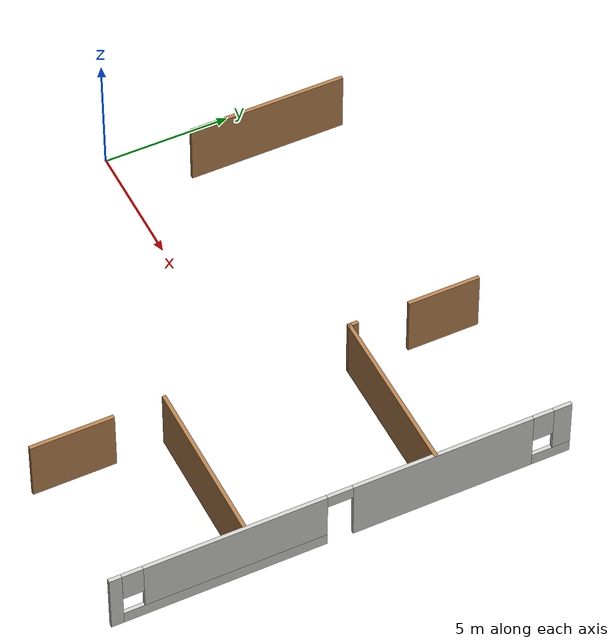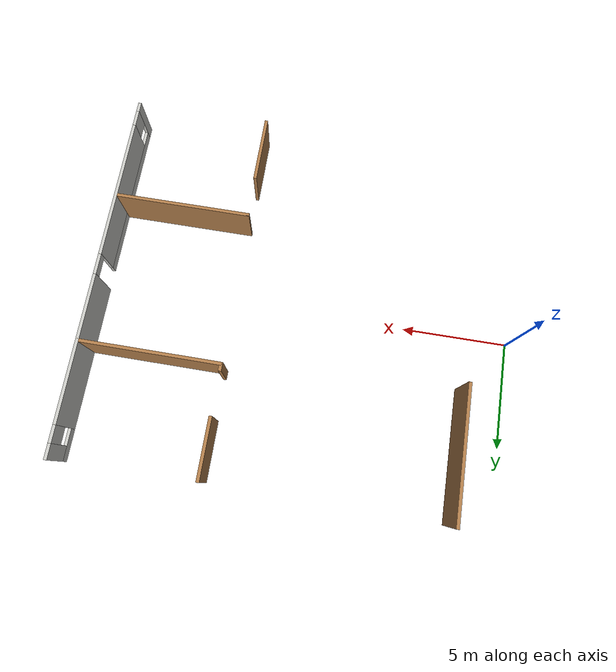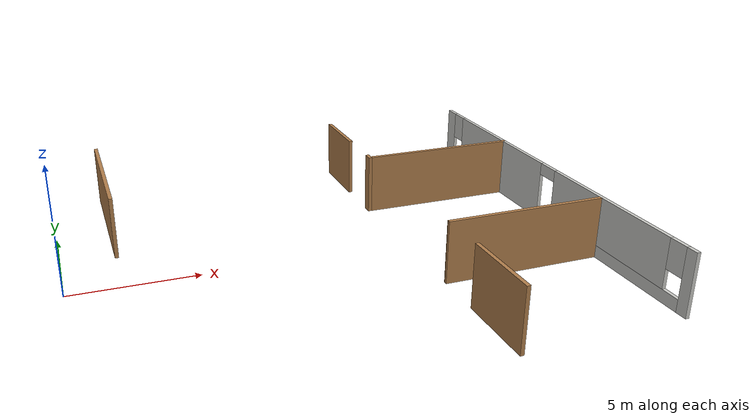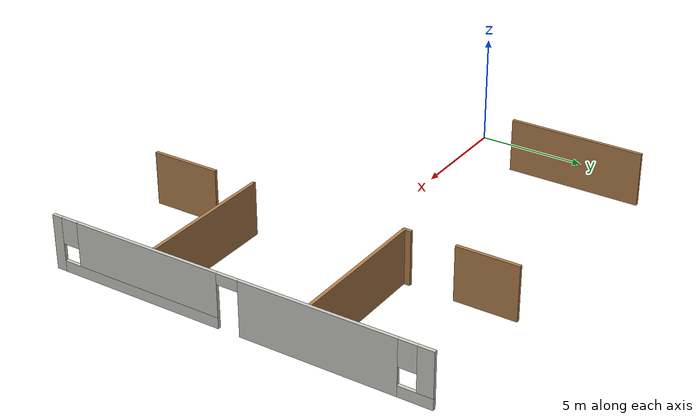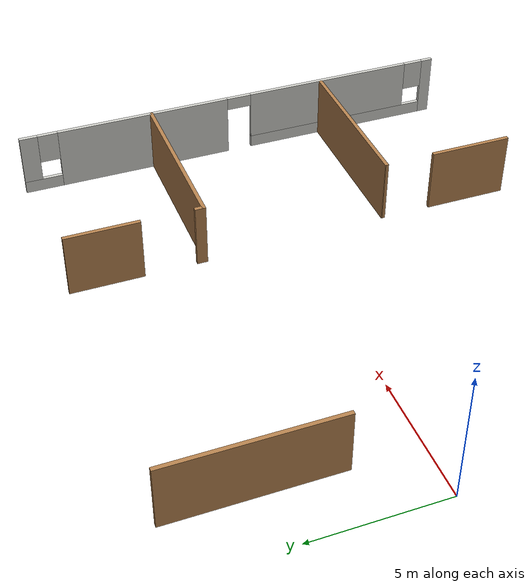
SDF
<sdf version="1.6">
 <model name="mybuilding">
  <link name="Wall_41">
   <pose>19.8298 0.007562 0 0 -0 1.5708</pose>
   <visual name="Wall_41_Visual_9">
    <pose>-0.150712 0 2.25 0 -0 0</pose>
    <geometry><box><size>1 0.15 0.5</size></box></geometry>
    <material>
     <script><uri>file://media/materials/scripts/gazebo.material</uri><name>Gazebo/CeilingTiled</name></script>
     <ambient>1 0.972549 0.847059 1</ambient>
     <shader type="pixel"/>
     <diffuse>1 1 1 1</diffuse>
     <specular>0 0 0 1</specular>
     <emissive>0 0 0 1</emissive>
    </material>
    <meta><layer>0</layer></meta>
   </visual>
   <visual name="Wall_41_Visual_0">
    <pose>-8.63665 0 1.25 0 -0 0</pose>
    <geometry><box><size>0.476697 0.15 2.5</size></box></geometry>
    <material>
     <script><uri>file://media/materials/scripts/gazebo.material</uri><name>Gazebo/CeilingTiled</name></script>
     <ambient>1 0.972549 0.847059 1</ambient>
     <shader type="pixel"/>
     <diffuse>1 1 1 1</diffuse>
     <specular>0 0 0 1</specular>
     <emissive>0 0 0 1</emissive>
    </material>
    <meta><layer>0</layer></meta>
   </visual>
   <visual name="Wall_41_Visual_1">
    <pose>3.85638 0 1.25 0 -0 0</pose>
    <geometry><box><size>7.01419 0.15 2.5</size></box></geometry>
    <material>
     <script><uri>file://media/materials/scripts/gazebo.material</uri><name>Gazebo/CeilingTiled</name></script>
     <ambient>1 0.972549 0.847059 1</ambient>
     <shader type="pixel"/>
     <diffuse>1 1 1 1</diffuse>
     <specular>0 0 0 1</specular>
     <emissive>0 0 0 1</emissive>
    </material>
    <meta><layer>0</layer></meta>
   </visual>
   <visual name="Wall_41_Visual_2">
    <pose>-4.52451 0 0.25 0 -0 0</pose>
    <geometry><box><size>7.74759 0.15 0.5</size></box></geometry>
    <material>
     <script><uri>file://media/materials/scripts/gazebo.material</uri><name>Gazebo/CeilingTiled</name></script>
     <ambient>1 0.972549 0.847059 1</ambient>
     <shader type="pixel"/>
     <diffuse>1 1 1 1</diffuse>
     <specular>0 0 0 1</specular>
     <emissive>0 0 0 1</emissive>
    </material>
    <meta><layer>0</layer></meta>
   </visual>
   <visual name="Wall_41_Visual_3">
    <pose>8.11924 0 0.25 0 -0 0</pose>
    <geometry><box><size>1.51152 0.15 0.5</size></box></geometry>
    <material>
     <script><uri>file://media/materials/scripts/gazebo.material</uri><name>Gazebo/CeilingTiled</name></script>
     <ambient>1 0.972549 0.847059 1</ambient>
     <shader type="pixel"/>
     <diffuse>1 1 1 1</diffuse>
     <specular>0 0 0 1</specular>
     <emissive>0 0 0 1</emissive>
    </material>
    <meta><layer>0</layer></meta>
   </visual>
   <visual name="Wall_41_Visual_4">
    <pose>-4.12451 0 1.5 0 -0 0</pose>
    <geometry><box><size>6.94759 0.15 2</size></box></geometry>
    <material>
     <script><uri>file://media/materials/scripts/gazebo.material</uri><name>Gazebo/CeilingTiled</name></script>
     <ambient>1 0.972549 0.847059 1</ambient>
     <shader type="pixel"/>
     <diffuse>1 1 1 1</diffuse>
     <specular>0 0 0 1</specular>
     <emissive>0 0 0 1</emissive>
    </material>
    <meta><layer>0</layer></meta>
   </visual>
   <visual name="Wall_41_Visual_5">
    <pose>-4.12451 0 1.5 0 -0 0</pose>
    <geometry><box><size>6.94759 0.15 2</size></box></geometry>
    <material>
     <script><uri>file://media/materials/scripts/gazebo.material</uri><name>Gazebo/CeilingTiled</name></script>
     <ambient>1 0.972549 0.847059 1</ambient>
     <shader type="pixel"/>
     <diffuse>1 1 1 1</diffuse>
     <specular>0 0 0 1</specular>
     <emissive>0 0 0 1</emissive>
    </material>
    <meta><layer>0</layer></meta>
   </visual>
   <visual name="Wall_41_Visual_6">
    <pose>8.51924 0 1.5 0 -0 0</pose>
    <geometry><box><size>0.711521 0.15 2</size></box></geometry>
    <material>
     <script><uri>file://media/materials/scripts/gazebo.material</uri><name>Gazebo/CeilingTiled</name></script>
     <ambient>1 0.972549 0.847059 1</ambient>
     <shader type="pixel"/>
     <diffuse>1 1 1 1</diffuse>
     <specular>0 0 0 1</specular>
     <emissive>0 0 0 1</emissive>
    </material>
    <meta><layer>0</layer></meta>
   </visual>
   <visual name="Wall_41_Visual_7">
    <pose>-7.9983 0 1.9 0 -0 0</pose>
    <geometry><box><size>0.8 0.15 1.2</size></box></geometry>
    <material>
     <script><uri>file://media/materials/scripts/gazebo.material</uri><name>Gazebo/CeilingTiled</name></script>
     <ambient>1 0.972549 0.847059 1</ambient>
     <shader type="pixel"/>
     <diffuse>1 1 1 1</diffuse>
     <specular>0 0 0 1</specular>
     <emissive>0 0 0 1</emissive>
    </material>
    <meta><layer>0</layer></meta>
   </visual>
   <visual name="Wall_41_Visual_8">
    <pose>7.76348 0 1.9 0 -0 0</pose>
    <geometry><box><size>0.8 0.15 1.2</size></box></geometry>
    <material>
     <script><uri>file://media/materials/scripts/gazebo.material</uri><name>Gazebo/CeilingTiled</name></script>
     <ambient>1 0.972549 0.847059 1</ambient>
     <shader type="pixel"/>
     <diffuse>1 1 1 1</diffuse>
     <specular>0 0 0 1</specular>
     <emissive>0 0 0 1</emissive>
    </material>
    <meta><layer>0</layer></meta>
   </visual>
   <visual name="Wall_41_Visual_10">
    <pose>-0.150712 0 2.25 0 -0 0</pose>
    <geometry><box><size>1 0.15 0.5</size></box></geometry>
    <material>
     <script><uri>file://media/materials/scripts/gazebo.material</uri><name>Gazebo/CeilingTiled</name></script>
     <ambient>1 0.972549 0.847059 1</ambient>
     <shader type="pixel"/>
     <diffuse>1 1 1 1</diffuse>
     <specular>0 0 0 1</specular>
     <emissive>0 0 0 1</emissive>
    </material>
    <meta><layer>0</layer></meta>
   </visual>
   <collision name="Wall_41_Collision_0">
    <pose>-8.63665 0 1.25 0 -0 0</pose>
    <geometry><box><size>0.476697 0.15 2.5</size></box></geometry>
    <surface>
     <friction>
      <ode><mu>1</mu><mu2>1</mu2><fdir1>0 0 0</fdir1><slip1>0</slip1><slip2>0</slip2></ode>
      <torsional>
       <coefficient>1</coefficient>
       <patch_radius>0</patch_radius>
       <surface_radius>0</surface_radius>
       <use_patch_radius>1</use_patch_radius>
       <ode><slip>0</slip></ode>
      </torsional>
     </friction>
     <bounce><restitution_coefficient>0</restitution_coefficient><threshold>1e+06</threshold></bounce>
     <contact>
      <collide_without_contact>0</collide_without_contact>
      <collide_without_contact_bitmask>1</collide_without_contact_bitmask>
      <collide_bitmask>1</collide_bitmask>
      <ode>
       <soft_cfm>0</soft_cfm>
       <soft_erp>0.2</soft_erp>
       <kp>1e+13</kp>
       <kd>1</kd>
       <max_vel>0.01</max_vel>
       <min_depth>0</min_depth>
      </ode>
      <bullet>
       <split_impulse>1</split_impulse>
       <split_impulse_penetration_threshold>-0.01</split_impulse_penetration_threshold>
       <soft_cfm>0</soft_cfm>
       <soft_erp>0.2</soft_erp>
       <kp>1e+13</kp>
       <kd>1</kd>
      </bullet>
     </contact>
    </surface>
   </collision>
   <collision name="Wall_41_Collision_1">
    <pose>3.85638 0 1.25 0 -0 0</pose>
    <geometry><box><size>7.01419 0.15 2.5</size></box></geometry>
    <surface>
     <friction>
      <ode><mu>1</mu><mu2>1</mu2><fdir1>0 0 0</fdir1><slip1>0</slip1><slip2>0</slip2></ode>
      <torsional>
       <coefficient>1</coefficient>
       <patch_radius>0</patch_radius>
       <surface_radius>0</surface_radius>
       <use_patch_radius>1</use_patch_radius>
       <ode><slip>0</slip></ode>
      </torsional>
     </friction>
     <bounce><restitution_coefficient>0</restitution_coefficient><threshold>1e+06</threshold></bounce>
     <contact>
      <collide_without_contact>0</collide_without_contact>
      <collide_without_contact_bitmask>1</collide_without_contact_bitmask>
      <collide_bitmask>1</collide_bitmask>
      <ode>
       <soft_cfm>0</soft_cfm>
       <soft_erp>0.2</soft_erp>
       <kp>1e+13</kp>
       <kd>1</kd>
       <max_vel>0.01</max_vel>
       <min_depth>0</min_depth>
      </ode>
      <bullet>
       <split_impulse>1</split_impulse>
       <split_impulse_penetration_threshold>-0.01</split_impulse_penetration_threshold>
       <soft_cfm>0</soft_cfm>
       <soft_erp>0.2</soft_erp>
       <kp>1e+13</kp>
       <kd>1</kd>
      </bullet>
     </contact>
    </surface>
   </collision>
   <collision name="Wall_41_Collision_2">
    <pose>-4.52451 0 0.25 0 -0 0</pose>
    <geometry><box><size>7.74759 0.15 0.5</size></box></geometry>
    <surface>
     <friction>
      <ode><mu>1</mu><mu2>1</mu2><fdir1>0 0 0</fdir1><slip1>0</slip1><slip2>0</slip2></ode>
      <torsional>
       <coefficient>1</coefficient>
       <patch_radius>0</patch_radius>
       <surface_radius>0</surface_radius>
       <use_patch_radius>1</use_patch_radius>
       <ode><slip>0</slip></ode>
      </torsional>
     </friction>
     <bounce><restitution_coefficient>0</restitution_coefficient><threshold>1e+06</threshold></bounce>
     <contact>
      <collide_without_contact>0</collide_without_contact>
      <collide_without_contact_bitmask>1</collide_without_contact_bitmask>
      <collide_bitmask>1</collide_bitmask>
      <ode>
       <soft_cfm>0</soft_cfm>
       <soft_erp>0.2</soft_erp>
       <kp>1e+13</kp>
       <kd>1</kd>
       <max_vel>0.01</max_vel>
       <min_depth>0</min_depth>
      </ode>
      <bullet>
       <split_impulse>1</split_impulse>
       <split_impulse_penetration_threshold>-0.01</split_impulse_penetration_threshold>
       <soft_cfm>0</soft_cfm>
       <soft_erp>0.2</soft_erp>
       <kp>1e+13</kp>
       <kd>1</kd>
      </bullet>
     </contact>
    </surface>
   </collision>
   <collision name="Wall_41_Collision_3">
    <pose>8.11924 0 0.25 0 -0 0</pose>
    <geometry><box><size>1.51152 0.15 0.5</size></box></geometry>
    <surface>
     <friction>
      <ode><mu>1</mu><mu2>1</mu2><fdir1>0 0 0</fdir1><slip1>0</slip1><slip2>0</slip2></ode>
      <torsional>
       <coefficient>1</coefficient>
       <patch_radius>0</patch_radius>
       <surface_radius>0</surface_radius>
       <use_patch_radius>1</use_patch_radius>
       <ode><slip>0</slip></ode>
      </torsional>
     </friction>
     <bounce><restitution_coefficient>0</restitution_coefficient><threshold>1e+06</threshold></bounce>
     <contact>
      <collide_without_contact>0</collide_without_contact>
      <collide_without_contact_bitmask>1</collide_without_contact_bitmask>
      <collide_bitmask>1</collide_bitmask>
      <ode>
       <soft_cfm>0</soft_cfm>
       <soft_erp>0.2</soft_erp>
       <kp>1e+13</kp>
       <kd>1</kd>
       <max_vel>0.01</max_vel>
       <min_depth>0</min_depth>
      </ode>
      <bullet>
       <split_impulse>1</split_impulse>
       <split_impulse_penetration_threshold>-0.01</split_impulse_penetration_threshold>
       <soft_cfm>0</soft_cfm>
       <soft_erp>0.2</soft_erp>
       <kp>1e+13</kp>
       <kd>1</kd>
      </bullet>
     </contact>
    </surface>
   </collision>
   <collision name="Wall_41_Collision_4">
    <pose>-4.12451 0 1.5 0 -0 0</pose>
    <geometry><box><size>6.94759 0.15 2</size></box></geometry>
    <surface>
     <friction>
      <ode><mu>1</mu><mu2>1</mu2><fdir1>0 0 0</fdir1><slip1>0</slip1><slip2>0</slip2></ode>
      <torsional>
       <coefficient>1</coefficient>
       <patch_radius>0</patch_radius>
       <surface_radius>0</surface_radius>
       <use_patch_radius>1</use_patch_radius>
       <ode><slip>0</slip></ode>
      </torsional>
     </friction>
     <bounce><restitution_coefficient>0</restitution_coefficient><threshold>1e+06</threshold></bounce>
     <contact>
      <collide_without_contact>0</collide_without_contact>
      <collide_without_contact_bitmask>1</collide_without_contact_bitmask>
      <collide_bitmask>1</collide_bitmask>
      <ode>
       <soft_cfm>0</soft_cfm>
       <soft_erp>0.2</soft_erp>
       <kp>1e+13</kp>
       <kd>1</kd>
       <max_vel>0.01</max_vel>
       <min_depth>0</min_depth>
      </ode>
      <bullet>
       <split_impulse>1</split_impulse>
       <split_impulse_penetration_threshold>-0.01</split_impulse_penetration_threshold>
       <soft_cfm>0</soft_cfm>
       <soft_erp>0.2</soft_erp>
       <kp>1e+13</kp>
       <kd>1</kd>
      </bullet>
     </contact>
    </surface>
   </collision>
   <collision name="Wall_41_Collision_5">
    <pose>-4.12451 0 1.5 0 -0 0</pose>
    <geometry><box><size>6.94759 0.15 2</size></box></geometry>
    <surface>
     <friction>
      <ode><mu>1</mu><mu2>1</mu2><fdir1>0 0 0</fdir1><slip1>0</slip1><slip2>0</slip2></ode>
      <torsional>
       <coefficient>1</coefficient>
       <patch_radius>0</patch_radius>
       <surface_radius>0</surface_radius>
       <use_patch_radius>1</use_patch_radius>
       <ode><slip>0</slip></ode>
      </torsional>
     </friction>
     <bounce><restitution_coefficient>0</restitution_coefficient><threshold>1e+06</threshold></bounce>
     <contact>
      <collide_without_contact>0</collide_without_contact>
      <collide_without_contact_bitmask>1</collide_without_contact_bitmask>
      <collide_bitmask>1</collide_bitmask>
      <ode>
       <soft_cfm>0</soft_cfm>
       <soft_erp>0.2</soft_erp>
       <kp>1e+13</kp>
       <kd>1</kd>
       <max_vel>0.01</max_vel>
       <min_depth>0</min_depth>
      </ode>
      <bullet>
       <split_impulse>1</split_impulse>
       <split_impulse_penetration_threshold>-0.01</split_impulse_penetration_threshold>
       <soft_cfm>0</soft_cfm>
       <soft_erp>0.2</soft_erp>
       <kp>1e+13</kp>
       <kd>1</kd>
      </bullet>
     </contact>
    </surface>
   </collision>
   <collision name="Wall_41_Collision_6">
    <pose>8.51924 0 1.5 0 -0 0</pose>
    <geometry><box><size>0.711521 0.15 2</size></box></geometry>
    <surface>
     <friction>
      <ode><mu>1</mu><mu2>1</mu2><fdir1>0 0 0</fdir1><slip1>0</slip1><slip2>0</slip2></ode>
      <torsional>
       <coefficient>1</coefficient>
       <patch_radius>0</patch_radius>
       <surface_radius>0</surface_radius>
       <use_patch_radius>1</use_patch_radius>
       <ode><slip>0</slip></ode>
      </torsional>
     </friction>
     <bounce><restitution_coefficient>0</restitution_coefficient><threshold>1e+06</threshold></bounce>
     <contact>
      <collide_without_contact>0</collide_without_contact>
      <collide_without_contact_bitmask>1</collide_without_contact_bitmask>
      <collide_bitmask>1</collide_bitmask>
      <ode>
       <soft_cfm>0</soft_cfm>
       <soft_erp>0.2</soft_erp>
       <kp>1e+13</kp>
       <kd>1</kd>
       <max_vel>0.01</max_vel>
       <min_depth>0</min_depth>
      </ode>
      <bullet>
       <split_impulse>1</split_impulse>
       <split_impulse_penetration_threshold>-0.01</split_impulse_penetration_threshold>
       <soft_cfm>0</soft_cfm>
       <soft_erp>0.2</soft_erp>
       <kp>1e+13</kp>
       <kd>1</kd>
      </bullet>
     </contact>
    </surface>
   </collision>
   <collision name="Wall_41_Collision_7">
    <pose>-7.9983 0 1.9 0 -0 0</pose>
    <geometry><box><size>0.8 0.15 1.2</size></box></geometry>
    <surface>
     <friction>
      <ode><mu>1</mu><mu2>1</mu2><fdir1>0 0 0</fdir1><slip1>0</slip1><slip2>0</slip2></ode>
      <torsional>
       <coefficient>1</coefficient>
       <patch_radius>0</patch_radius>
       <surface_radius>0</surface_radius>
       <use_patch_radius>1</use_patch_radius>
       <ode><slip>0</slip></ode>
      </torsional>
     </friction>
     <bounce><restitution_coefficient>0</restitution_coefficient><threshold>1e+06</threshold></bounce>
     <contact>
      <collide_without_contact>0</collide_without_contact>
      <collide_without_contact_bitmask>1</collide_without_contact_bitmask>
      <collide_bitmask>1</collide_bitmask>
      <ode>
       <soft_cfm>0</soft_cfm>
       <soft_erp>0.2</soft_erp>
       <kp>1e+13</kp>
       <kd>1</kd>
       <max_vel>0.01</max_vel>
       <min_depth>0</min_depth>
      </ode>
      <bullet>
       <split_impulse>1</split_impulse>
       <split_impulse_penetration_threshold>-0.01</split_impulse_penetration_threshold>
       <soft_cfm>0</soft_cfm>
       <soft_erp>0.2</soft_erp>
       <kp>1e+13</kp>
       <kd>1</kd>
      </bullet>
     </contact>
    </surface>
   </collision>
   <collision name="Wall_41_Collision_8">
    <pose>7.76348 0 1.9 0 -0 0</pose>
    <geometry><box><size>0.8 0.15 1.2</size></box></geometry>
    <surface>
     <friction>
      <ode><mu>1</mu><mu2>1</mu2><fdir1>0 0 0</fdir1><slip1>0</slip1><slip2>0</slip2></ode>
      <torsional>
       <coefficient>1</coefficient>
       <patch_radius>0</patch_radius>
       <surface_radius>0</surface_radius>
       <use_patch_radius>1</use_patch_radius>
       <ode><slip>0</slip></ode>
      </torsional>
     </friction>
     <bounce><restitution_coefficient>0</restitution_coefficient><threshold>1e+06</threshold></bounce>
     <contact>
      <collide_without_contact>0</collide_without_contact>
      <collide_without_contact_bitmask>1</collide_without_contact_bitmask>
      <collide_bitmask>1</collide_bitmask>
      <ode>
       <soft_cfm>0</soft_cfm>
       <soft_erp>0.2</soft_erp>
       <kp>1e+13</kp>
       <kd>1</kd>
       <max_vel>0.01</max_vel>
       <min_depth>0</min_depth>
      </ode>
      <bullet>
       <split_impulse>1</split_impulse>
       <split_impulse_penetration_threshold>-0.01</split_impulse_penetration_threshold>
       <soft_cfm>0</soft_cfm>
       <soft_erp>0.2</soft_erp>
       <kp>1e+13</kp>
       <kd>1</kd>
      </bullet>
     </contact>
    </surface>
   </collision>
   <collision name="Wall_41_Collision_9">
    <pose>-0.150712 0 2.25 0 -0 0</pose>
    <geometry><box><size>1 0.15 0.5</size></box></geometry>
    <surface>
     <friction>
      <ode><mu>1</mu><mu2>1</mu2><fdir1>0 0 0</fdir1><slip1>0</slip1><slip2>0</slip2></ode>
      <torsional>
       <coefficient>1</coefficient>
       <patch_radius>0</patch_radius>
       <surface_radius>0</surface_radius>
       <use_patch_radius>1</use_patch_radius>
       <ode><slip>0</slip></ode>
      </torsional>
     </friction>
     <bounce><restitution_coefficient>0</restitution_coefficient><threshold>1e+06</threshold></bounce>
     <contact>
      <collide_without_contact>0</collide_without_contact>
      <collide_without_contact_bitmask>1</collide_without_contact_bitmask>
      <collide_bitmask>1</collide_bitmask>
      <ode>
       <soft_cfm>0</soft_cfm>
       <soft_erp>0.2</soft_erp>
       <kp>1e+13</kp>
       <kd>1</kd>
       <max_vel>0.01</max_vel>
       <min_depth>0</min_depth>
      </ode>
      <bullet>
       <split_impulse>1</split_impulse>
       <split_impulse_penetration_threshold>-0.01</split_impulse_penetration_threshold>
       <soft_cfm>0</soft_cfm>
       <soft_erp>0.2</soft_erp>
       <kp>1e+13</kp>
       <kd>1</kd>
      </bullet>
     </contact>
    </surface>
   </collision>
   <collision name="Wall_41_Collision_10">
    <pose>-0.150712 0 2.25 0 -0 0</pose>
    <geometry><box><size>1 0.15 0.5</size></box></geometry>
    <surface>
     <friction>
      <ode><mu>1</mu><mu2>1</mu2><fdir1>0 0 0</fdir1><slip1>0</slip1><slip2>0</slip2></ode>
      <torsional>
       <coefficient>1</coefficient>
       <patch_radius>0</patch_radius>
       <surface_radius>0</surface_radius>
       <use_patch_radius>1</use_patch_radius>
       <ode><slip>0</slip></ode>
      </torsional>
     </friction>
     <bounce><restitution_coefficient>0</restitution_coefficient><threshold>1e+06</threshold></bounce>
     <contact>
      <collide_without_contact>0</collide_without_contact>
      <collide_without_contact_bitmask>1</collide_without_contact_bitmask>
      <collide_bitmask>1</collide_bitmask>
      <ode>
       <soft_cfm>0</soft_cfm>
       <soft_erp>0.2</soft_erp>
       <kp>1e+13</kp>
       <kd>1</kd>
       <max_vel>0.01</max_vel>
       <min_depth>0</min_depth>
      </ode>
      <bullet>
       <split_impulse>1</split_impulse>
       <split_impulse_penetration_threshold>-0.01</split_impulse_penetration_threshold>
       <soft_cfm>0</soft_cfm>
       <soft_erp>0.2</soft_erp>
       <kp>1e+13</kp>
       <kd>1</kd>
      </bullet>
     </contact>
    </surface>
   </collision>
  </link>
  <link name="Wall_53">
   <pose>13.345 -6.28863 0 0 -0 1.5708</pose>
   <visual name="Wall_53_Visual_0">
    <pose>-1.01562 0 1.25 0 -0 0</pose>
    <geometry><box><size>3.21877 0.15 2.5</size></box></geometry>
    <material>
     <script><uri>file://media/materials/scripts/gazebo.material</uri><name>Gazebo/Wood</name></script>
     <ambient>1 1 1 1</ambient>
     <shader type="pixel"/>
     <diffuse>1 1 1 1</diffuse>
     <specular>0.2 0.2 0.2 1</specular>
     <emissive>0 0 0 1</emissive>
    </material>
    <meta><layer>0</layer></meta>
   </visual>
   <visual name="Wall_53_Visual_1">
    <pose>2.60938 0 1.25 0 -0 0</pose>
    <geometry><box><size>0.031234 0.15 2.5</size></box></geometry>
    <material>
     <script><uri>file://media/materials/scripts/gazebo.material</uri><name>Gazebo/Wood</name></script>
     <ambient>1 1 1 1</ambient>
     <shader type="pixel"/>
     <diffuse>1 1 1 1</diffuse>
     <specular>0.2 0.2 0.2 1</specular>
     <emissive>0 0 0 1</emissive>
    </material>
    <meta><layer>0</layer></meta>
   </visual>
   <collision name="Wall_53_Collision_0">
    <pose>-1.01562 0 1.25 0 -0 0</pose>
    <geometry><box><size>3.21877 0.15 2.5</size></box></geometry>
    <surface>
     <friction>
      <ode><mu>1</mu><mu2>1</mu2><fdir1>0 0 0</fdir1><slip1>0</slip1><slip2>0</slip2></ode>
      <torsional>
       <coefficient>1</coefficient>
       <patch_radius>0</patch_radius>
       <surface_radius>0</surface_radius>
       <use_patch_radius>1</use_patch_radius>
       <ode><slip>0</slip></ode>
      </torsional>
     </friction>
     <bounce><restitution_coefficient>0</restitution_coefficient><threshold>1e+06</threshold></bounce>
     <contact>
      <collide_without_contact>0</collide_without_contact>
      <collide_without_contact_bitmask>1</collide_without_contact_bitmask>
      <collide_bitmask>1</collide_bitmask>
      <ode>
       <soft_cfm>0</soft_cfm>
       <soft_erp>0.2</soft_erp>
       <kp>1e+13</kp>
       <kd>1</kd>
       <max_vel>0.01</max_vel>
       <min_depth>0</min_depth>
      </ode>
      <bullet>
       <split_impulse>1</split_impulse>
       <split_impulse_penetration_threshold>-0.01</split_impulse_penetration_threshold>
       <soft_cfm>0</soft_cfm>
       <soft_erp>0.2</soft_erp>
       <kp>1e+13</kp>
       <kd>1</kd>
      </bullet>
     </contact>
    </surface>
   </collision>
   <collision name="Wall_53_Collision_1">
    <pose>2.60938 0 1.25 0 -0 0</pose>
    <geometry><box><size>0.031234 0.15 2.5</size></box></geometry>
    <surface>
     <friction>
      <ode><mu>1</mu><mu2>1</mu2><fdir1>0 0 0</fdir1><slip1>0</slip1><slip2>0</slip2></ode>
      <torsional>
       <coefficient>1</coefficient>
       <patch_radius>0</patch_radius>
       <surface_radius>0</surface_radius>
       <use_patch_radius>1</use_patch_radius>
       <ode><slip>0</slip></ode>
      </torsional>
     </friction>
     <bounce><restitution_coefficient>0</restitution_coefficient><threshold>1e+06</threshold></bounce>
     <contact>
      <collide_without_contact>0</collide_without_contact>
      <collide_without_contact_bitmask>1</collide_without_contact_bitmask>
      <collide_bitmask>1</collide_bitmask>
      <ode>
       <soft_cfm>0</soft_cfm>
       <soft_erp>0.2</soft_erp>
       <kp>1e+13</kp>
       <kd>1</kd>
       <max_vel>0.01</max_vel>
       <min_depth>0</min_depth>
      </ode>
      <bullet>
       <split_impulse>1</split_impulse>
       <split_impulse_penetration_threshold>-0.01</split_impulse_penetration_threshold>
       <soft_cfm>0</soft_cfm>
       <soft_erp>0.2</soft_erp>
       <kp>1e+13</kp>
       <kd>1</kd>
      </bullet>
     </contact>
    </surface>
   </collision>
  </link>
  <link name="Wall_54">
   <pose>16.52 -3.73863 0 0 -0 0</pose>
   <visual name="Wall_54_Visual">
    <pose>0 0 1.25 0 -0 0</pose>
    <geometry><box><size>6.5 0.15 2.5</size></box></geometry>
    <material>
     <script><uri>file://media/materials/scripts/gazebo.material</uri><name>Gazebo/Wood</name></script>
     <ambient>1 1 1 1</ambient>
     <shader type="pixel"/>
     <diffuse>1 1 1 1</diffuse>
     <specular>0.2 0.2 0.2 1</specular>
     <emissive>0 0 0 1</emissive>
    </material>
    <meta><layer>0</layer></meta>
   </visual>
   <collision name="Wall_54_Collision">
    <pose>0 0 1.25 0 -0 0</pose>
    <geometry><box><size>6.5 0.15 2.5</size></box></geometry>
    <surface>
     <friction>
      <ode><mu>1</mu><mu2>1</mu2><fdir1>0 0 0</fdir1><slip1>0</slip1><slip2>0</slip2></ode>
      <torsional>
       <coefficient>1</coefficient>
       <patch_radius>0</patch_radius>
       <surface_radius>0</surface_radius>
       <use_patch_radius>1</use_patch_radius>
       <ode><slip>0</slip></ode>
      </torsional>
     </friction>
     <bounce><restitution_coefficient>0</restitution_coefficient><threshold>1e+06</threshold></bounce>
     <contact>
      <collide_without_contact>0</collide_without_contact>
      <collide_without_contact_bitmask>1</collide_without_contact_bitmask>
      <collide_bitmask>1</collide_bitmask>
      <ode>
       <soft_cfm>0</soft_cfm>
       <soft_erp>0.2</soft_erp>
       <kp>1e+13</kp>
       <kd>1</kd>
       <max_vel>0.01</max_vel>
       <min_depth>0</min_depth>
      </ode>
      <bullet>
       <split_impulse>1</split_impulse>
       <split_impulse_penetration_threshold>-0.01</split_impulse_penetration_threshold>
       <soft_cfm>0</soft_cfm>
       <soft_erp>0.2</soft_erp>
       <kp>1e+13</kp>
       <kd>1</kd>
      </bullet>
     </contact>
    </surface>
   </collision>
  </link>
  <link name="Wall_56">
   <pose>13.2051 6.10143 0 0 0 -1.5708</pose>
   <visual name="Wall_56_Visual_0">
    <pose>-1.20641 0 1.25 0 -0 0</pose>
    <geometry><box><size>2.83717 0.15 2.5</size></box></geometry>
    <material>
     <script><uri>file://media/materials/scripts/gazebo.material</uri><name>Gazebo/Wood</name></script>
     <ambient>1 1 1 1</ambient>
     <shader type="pixel"/>
     <diffuse>1 1 1 1</diffuse>
     <specular>0.2 0.2 0.2 1</specular>
     <emissive>0 0 0 1</emissive>
    </material>
    <meta><layer>0</layer></meta>
   </visual>
   <visual name="Wall_56_Visual_1">
    <pose>2.41859 0 1.25 0 -0 0</pose>
    <geometry><box><size>0.412826 0.15 2.5</size></box></geometry>
    <material>
     <script><uri>file://media/materials/scripts/gazebo.material</uri><name>Gazebo/Wood</name></script>
     <ambient>1 1 1 1</ambient>
     <shader type="pixel"/>
     <diffuse>1 1 1 1</diffuse>
     <specular>0.2 0.2 0.2 1</specular>
     <emissive>0 0 0 1</emissive>
    </material>
    <meta><layer>0</layer></meta>
   </visual>
   <collision name="Wall_56_Collision_1">
    <pose>2.41859 0 1.25 0 -0 0</pose>
    <geometry><box><size>0.412826 0.15 2.5</size></box></geometry>
    <surface>
     <friction>
      <ode><mu>1</mu><mu2>1</mu2><fdir1>0 0 0</fdir1><slip1>0</slip1><slip2>0</slip2></ode>
      <torsional>
       <coefficient>1</coefficient>
       <patch_radius>0</patch_radius>
       <surface_radius>0</surface_radius>
       <use_patch_radius>1</use_patch_radius>
       <ode><slip>0</slip></ode>
      </torsional>
     </friction>
     <bounce><restitution_coefficient>0</restitution_coefficient><threshold>1e+06</threshold></bounce>
     <contact>
      <collide_without_contact>0</collide_without_contact>
      <collide_without_contact_bitmask>1</collide_without_contact_bitmask>
      <collide_bitmask>1</collide_bitmask>
      <ode>
       <soft_cfm>0</soft_cfm>
       <soft_erp>0.2</soft_erp>
       <kp>1e+13</kp>
       <kd>1</kd>
       <max_vel>0.01</max_vel>
       <min_depth>0</min_depth>
      </ode>
      <bullet>
       <split_impulse>1</split_impulse>
       <split_impulse_penetration_threshold>-0.01</split_impulse_penetration_threshold>
       <soft_cfm>0</soft_cfm>
       <soft_erp>0.2</soft_erp>
       <kp>1e+13</kp>
       <kd>1</kd>
      </bullet>
     </contact>
    </surface>
   </collision>
   <collision name="Wall_56_Collision_0">
    <pose>-1.20641 0 1.25 0 -0 0</pose>
    <geometry><box><size>2.83717 0.15 2.5</size></box></geometry>
    <surface>
     <friction>
      <ode><mu>1</mu><mu2>1</mu2><fdir1>0 0 0</fdir1><slip1>0</slip1><slip2>0</slip2></ode>
      <torsional>
       <coefficient>1</coefficient>
       <patch_radius>0</patch_radius>
       <surface_radius>0</surface_radius>
       <use_patch_radius>1</use_patch_radius>
       <ode><slip>0</slip></ode>
      </torsional>
     </friction>
     <bounce><restitution_coefficient>0</restitution_coefficient><threshold>1e+06</threshold></bounce>
     <contact>
      <collide_without_contact>0</collide_without_contact>
      <collide_without_contact_bitmask>1</collide_without_contact_bitmask>
      <collide_bitmask>1</collide_bitmask>
      <ode>
       <soft_cfm>0</soft_cfm>
       <soft_erp>0.2</soft_erp>
       <kp>1e+13</kp>
       <kd>1</kd>
       <max_vel>0.01</max_vel>
       <min_depth>0</min_depth>
      </ode>
      <bullet>
       <split_impulse>1</split_impulse>
       <split_impulse_penetration_threshold>-0.01</split_impulse_penetration_threshold>
       <soft_cfm>0</soft_cfm>
       <soft_erp>0.2</soft_erp>
       <kp>1e+13</kp>
       <kd>1</kd>
      </bullet>
     </contact>
    </surface>
   </collision>
  </link>
  <link name="Wall_57">
   <pose>16.5051 3.55143 0 0 -0 0</pose>
   <visual name="Wall_57_Visual">
    <pose>0 0 1.25 0 -0 0</pose>
    <geometry><box><size>6.75 0.15 2.5</size></box></geometry>
    <material>
     <script><uri>file://media/materials/scripts/gazebo.material</uri><name>Gazebo/Wood</name></script>
     <ambient>1 1 1 1</ambient>
     <shader type="pixel"/>
     <diffuse>1 1 1 1</diffuse>
     <specular>0.2 0.2 0.2 1</specular>
     <emissive>0 0 0 1</emissive>
    </material>
    <meta><layer>0</layer></meta>
   </visual>
   <collision name="Wall_57_Collision">
    <pose>0 0 1.25 0 -0 0</pose>
    <geometry><box><size>6.75 0.15 2.5</size></box></geometry>
    <surface>
     <friction>
      <ode><mu>1</mu><mu2>1</mu2><fdir1>0 0 0</fdir1><slip1>0</slip1><slip2>0</slip2></ode>
      <torsional>
       <coefficient>1</coefficient>
       <patch_radius>0</patch_radius>
       <surface_radius>0</surface_radius>
       <use_patch_radius>1</use_patch_radius>
       <ode><slip>0</slip></ode>
      </torsional>
     </friction>
     <bounce><restitution_coefficient>0</restitution_coefficient><threshold>1e+06</threshold></bounce>
     <contact>
      <collide_without_contact>0</collide_without_contact>
      <collide_without_contact_bitmask>1</collide_without_contact_bitmask>
      <collide_bitmask>1</collide_bitmask>
      <ode>
       <soft_cfm>0</soft_cfm>
       <soft_erp>0.2</soft_erp>
       <kp>1e+13</kp>
       <kd>1</kd>
       <max_vel>0.01</max_vel>
       <min_depth>0</min_depth>
      </ode>
      <bullet>
       <split_impulse>1</split_impulse>
       <split_impulse_penetration_threshold>-0.01</split_impulse_penetration_threshold>
       <soft_cfm>0</soft_cfm>
       <soft_erp>0.2</soft_erp>
       <kp>1e+13</kp>
       <kd>1</kd>
      </bullet>
     </contact>
    </surface>
   </collision>
  </link>
  <link name="Wall_68">
   <pose>2.13669 5.66171 0 0 0 -1.5708</pose>
   <visual name="Wall_68_Visual">
    <pose>0 0 1.25 0 -0 0</pose>
    <geometry><box><size>6.25 0.15 2.5</size></box></geometry>
    <material>
     <script><uri>file://media/materials/scripts/gazebo.material</uri><name>Gazebo/Wood</name></script>
     <ambient>1 1 1 1</ambient>
     <shader type="pixel"/>
     <diffuse>1 1 1 1</diffuse>
     <specular>0.2 0.2 0.2 1</specular>
     <emissive>0 0 0 1</emissive>
    </material>
    <meta><layer>0</layer></meta>
   </visual>
   <collision name="Wall_68_Collision">
    <pose>0 0 1.25 0 -0 0</pose>
    <geometry><box><size>6.25 0.15 2.5</size></box></geometry>
    <surface>
     <friction>
      <ode><mu>1</mu><mu2>1</mu2><fdir1>0 0 0</fdir1><slip1>0</slip1><slip2>0</slip2></ode>
      <torsional>
       <coefficient>1</coefficient>
       <patch_radius>0</patch_radius>
       <surface_radius>0</surface_radius>
       <use_patch_radius>1</use_patch_radius>
       <ode><slip>0</slip></ode>
      </torsional>
     </friction>
     <bounce><restitution_coefficient>0</restitution_coefficient><threshold>1e+06</threshold></bounce>
     <contact>
      <collide_without_contact>0</collide_without_contact>
      <collide_without_contact_bitmask>1</collide_without_contact_bitmask>
      <collide_bitmask>1</collide_bitmask>
      <ode>
       <soft_cfm>0</soft_cfm>
       <soft_erp>0.2</soft_erp>
       <kp>1e+13</kp>
       <kd>1</kd>
       <max_vel>0.01</max_vel>
       <min_depth>0</min_depth>
      </ode>
      <bullet>
       <split_impulse>1</split_impulse>
       <split_impulse_penetration_threshold>-0.01</split_impulse_penetration_threshold>
       <soft_cfm>0</soft_cfm>
       <soft_erp>0.2</soft_erp>
       <kp>1e+13</kp>
       <kd>1</kd>
      </bullet>
     </contact>
    </surface>
   </collision>
  </link>
  <static>1</static>
 </model>
</sdf>
